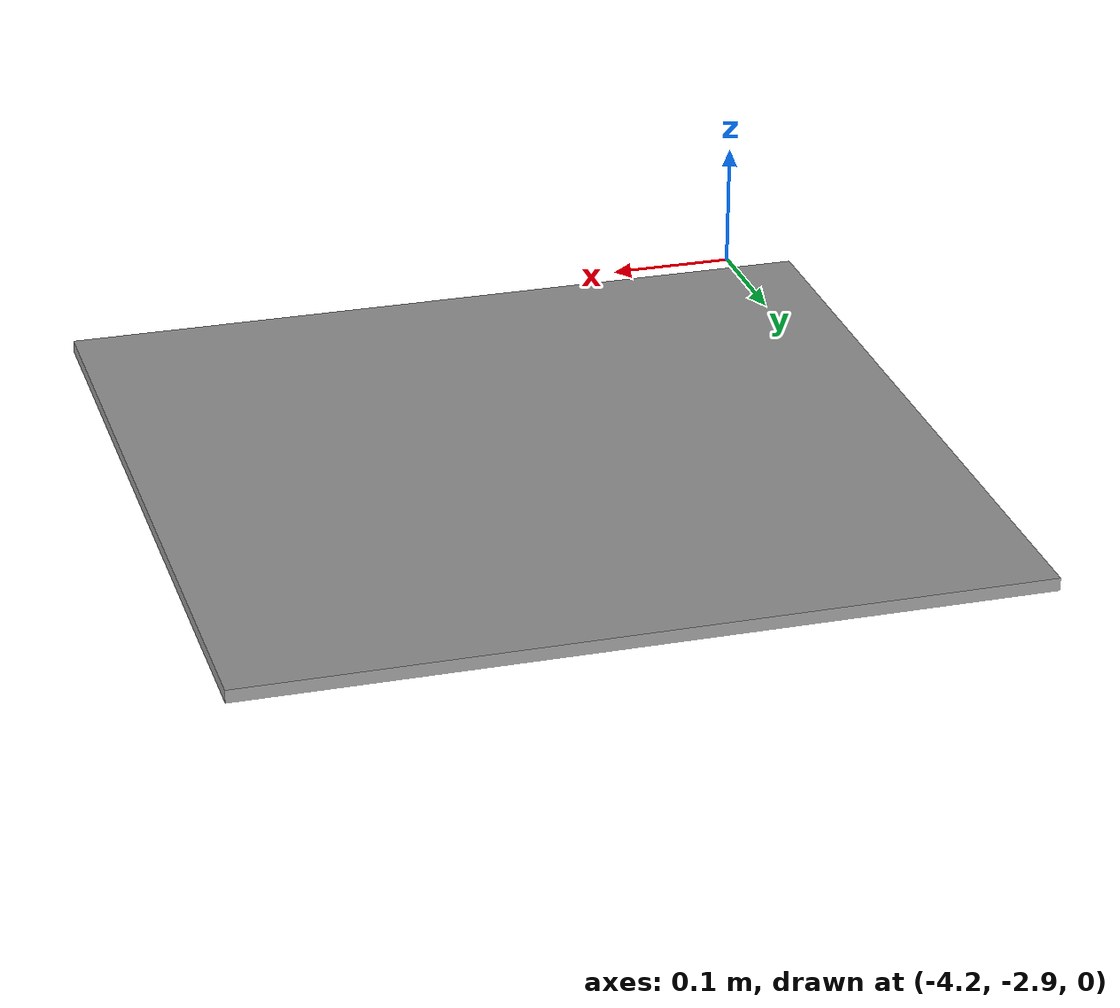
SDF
<?xml version='1.0'?>
<sdf version='1.6'>
  <model name='dropzone'>
    <pose frame=''>-3.937 -2.562 0 0 -0 0</pose>
    <link name='Wall_17'>
      <collision name='Wall_17_Collision'>
        <geometry>
          <box>
            <size>0.61 0.6 0.01</size>
          </box>
        </geometry>
        <pose frame=''>0 0 0.005 0 -0 0</pose>
      </collision>
      <visual name='Wall_17_Visual'>
        <pose frame=''>0 0 0.005 0 -0 0</pose>
        <geometry>
          <box>
            <size>0.61 0.6 0.01</size>
          </box>
        </geometry>
        <material>
          <script>
            <uri>file://media/materials/scripts/gazebo.material</uri>
            <name>Gazebo/Grey</name>
          </script>
          <ambient>1 1 1 1</ambient>
        </material>
        <meta>
          <layer>0</layer>
        </meta>
      </visual>
      <pose frame=''>0 0 0 0 -0 3.14159</pose>
    </link>
    <static>1</static>
  </model>
</sdf>
